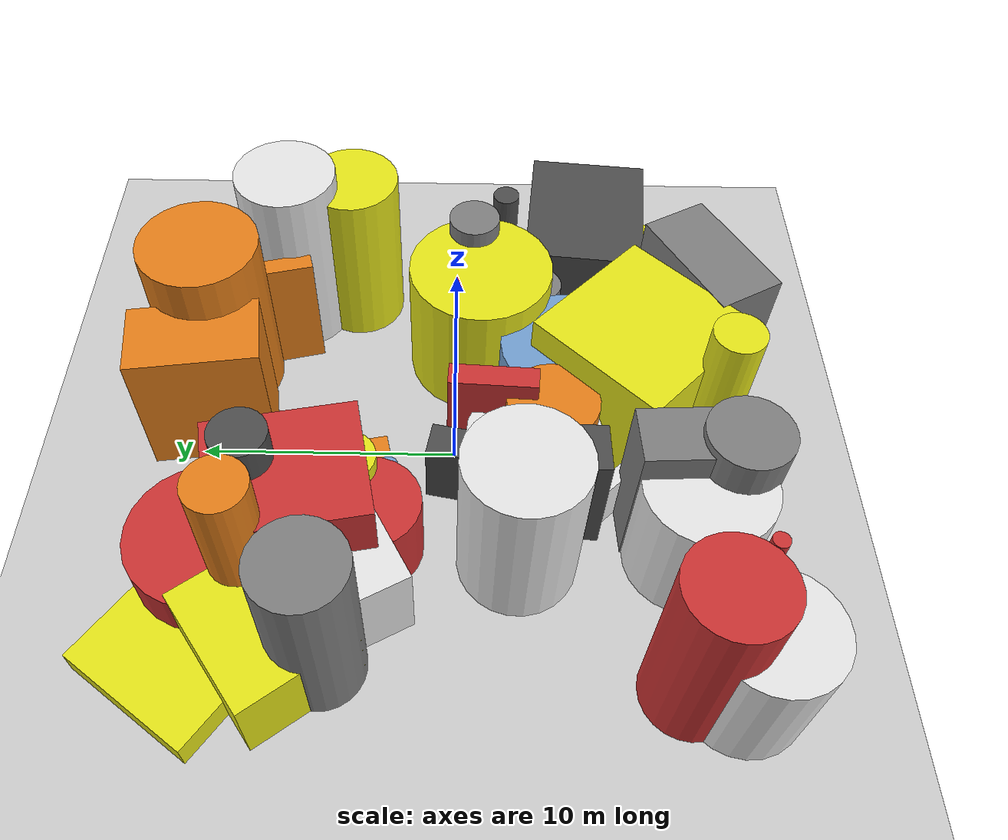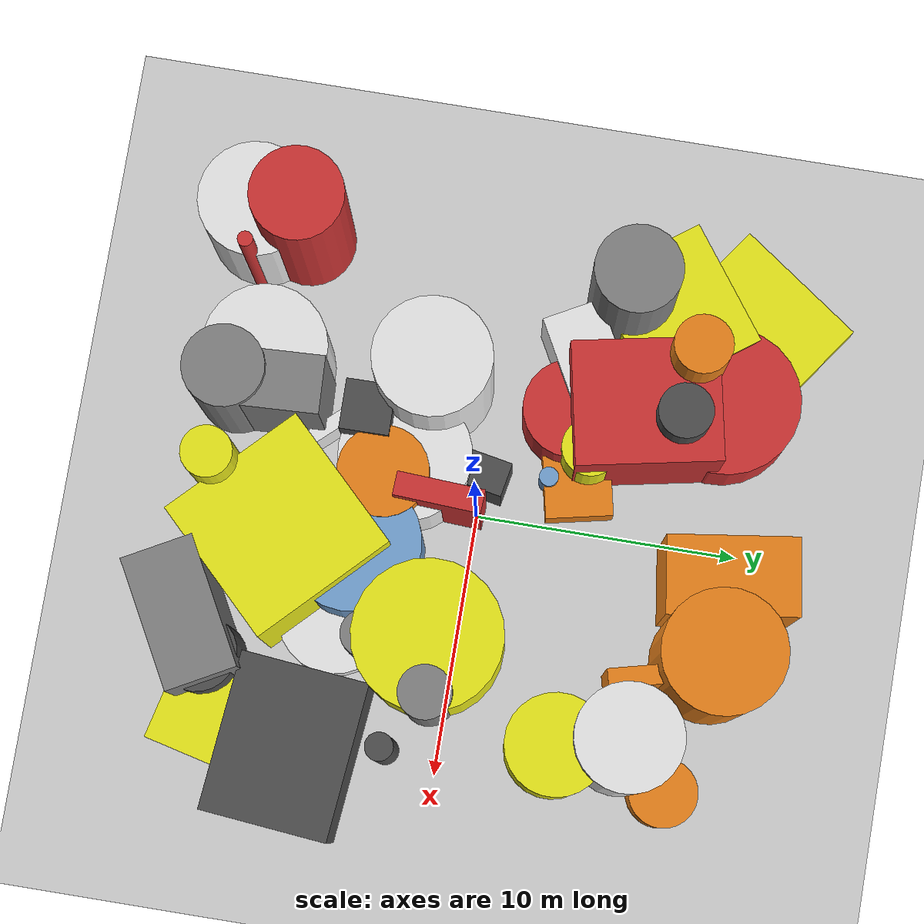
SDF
<?xml version='1.0'?>
<sdf version='1.6'>
  <world name='default'>
    <!-- Sun light -->
    <light name='sun' type='directional'>
      <cast_shadows>1</cast_shadows>
      <pose>0 0 10 0 0 0</pose>
      <diffuse>0.8 0.8 0.8 1</diffuse>
      <specular>0.2 0.2 0.2 1</specular>
      <attenuation>
        <range>1000</range>
        <constant>0.9</constant>
        <linear>0.01</linear>
        <quadratic>0.001</quadratic>
      </attenuation>
      <direction>-0.5 0.1 -0.9</direction>
    </light>

    <!-- Ground plane -->
    <model name='ground_plane'>
      <static>1</static>
      <link name='link'>
        <collision name='collision'>
          <geometry>
            <plane>
              <normal>0 0 1</normal>
              <size>100 100</size>
            </plane>
          </geometry>
          <surface>
            <contact>
              <collide_bitmask>65535</collide_bitmask>
              <ode/>
            </contact>
            <friction>
              <ode>
                <mu>100</mu>
                <mu2>50</mu2>
              </ode>
              <torsional><ode/></torsional>
            </friction>
            <bounce/>
          </surface>
          <max_contacts>10</max_contacts>
        </collision>
        <visual name='visual'>
          <cast_shadows>0</cast_shadows>
          <geometry>
            <plane>
              <normal>0 0 1</normal>
              <size>100 100</size>
            </plane>
          </geometry>
          <material>
            <script>
              <uri>file://media/materials/scripts/gazebo.material</uri>
              <n>Gazebo/Grey</n>
            </script>
          </material>
        </visual>
      </link>
    </model>

    <!-- Environment -->
    <magnetic_field>6e-06 2.3e-05 -4.2e-05</magnetic_field>
    <atmosphere type='adiabatic'/>
    <physics name='default_physics' default='0' type='ode'>
      <gravity>0 0 -9.8</gravity>
      <max_step_size>0.004</max_step_size>
      <real_time_factor>1</real_time_factor>
      <real_time_update_rate>250</real_time_update_rate>
    </physics>
    <scene>
      <ambient>0.4 0.4 0.4 1</ambient>
      <background>0.7 0.7 0.7 1</background>
      <shadows>1</shadows>
    </scene>
    <wind/>
    <spherical_coordinates>
      <surface_model>EARTH_WGS84</surface_model>
      <latitude_deg>0</latitude_deg>
      <longitude_deg>0</longitude_deg>
      <elevation>0</elevation>
      <heading_deg>0</heading_deg>
    </spherical_coordinates>

    <!-- ============ OBSTACLES (48) ============ -->
    <model name='obs_00'>
      <static>1</static>
      <link name='link'>
        <visual name='visual'>
          <geometry>
            <cylinder>
              <radius>1.6359</radius>
              <length>7.3609</length>
            </cylinder>
          </geometry>
          <material>
            <script>
              <n>Gazebo/Grey</n>
              <uri>file://media/materials/scripts/gazebo.material</uri>
            </script>
            <ambient>0.5 0.5 0.5 1</ambient>
          </material>
        </visual>
        <collision name='collision'>
          <geometry>
            <cylinder>
              <radius>1.6359</radius>
              <length>7.3609</length>
            </cylinder>
          </geometry>
          <max_contacts>10</max_contacts>
          <surface>
            <contact><ode/></contact>
            <bounce/>
            <friction>
              <ode><mu>1</mu><mu2>1</mu2></ode>
              <torsional><ode/></torsional>
            </friction>
          </surface>
        </collision>
      </link>
      <pose>-8.9470 4.5095 3.6805 0 0 0.4825</pose>
    </model>

    <model name='obs_01'>
      <static>1</static>
      <link name='link'>
        <visual name='visual'>
          <geometry>
            <cylinder>
              <radius>0.1690</radius>
              <length>2.8627</length>
            </cylinder>
          </geometry>
          <material>
            <script>
              <n>Gazebo/Red</n>
              <uri>file://media/materials/scripts/gazebo.material</uri>
            </script>
            <ambient>0.8 0.2 0.2 1</ambient>
          </material>
        </visual>
        <collision name='collision'>
          <geometry>
            <cylinder>
              <radius>0.1690</radius>
              <length>2.8627</length>
            </cylinder>
          </geometry>
          <max_contacts>10</max_contacts>
          <surface>
            <contact><ode/></contact>
            <bounce/>
            <friction>
              <ode><mu>1</mu><mu2>1</mu2></ode>
              <torsional><ode/></torsional>
            </friction>
          </surface>
        </collision>
      </link>
      <pose>2.9184 -6.1063 1.4313 0 0 1.0100</pose>
    </model>

    <model name='obs_02'>
      <static>1</static>
      <link name='link'>
        <visual name='visual'>
          <geometry>
            <cylinder>
              <radius>0.4771</radius>
              <length>2.1719</length>
            </cylinder>
          </geometry>
          <material>
            <script>
              <n>Gazebo/Blue</n>
              <uri>file://media/materials/scripts/gazebo.material</uri>
            </script>
            <ambient>0.447 0.624 0.812 1</ambient>
          </material>
        </visual>
        <collision name='collision'>
          <geometry>
            <cylinder>
              <radius>0.4771</radius>
              <length>2.1719</length>
            </cylinder>
          </geometry>
          <max_contacts>10</max_contacts>
          <surface>
            <contact><ode/></contact>
            <bounce/>
            <friction>
              <ode><mu>1</mu><mu2>1</mu2></ode>
              <torsional><ode/></torsional>
            </friction>
          </surface>
        </collision>
      </link>
      <pose>-4.6347 -6.8767 1.0860 0 0 1.1028</pose>
    </model>

    <model name='obs_03'>
      <static>1</static>
      <link name='link'>
        <visual name='visual'>
          <geometry>
            <cylinder>
              <radius>1.7100</radius>
              <length>4.4821</length>
            </cylinder>
          </geometry>
          <material>
            <script>
              <n>Gazebo/Orange</n>
              <uri>file://media/materials/scripts/gazebo.material</uri>
            </script>
            <ambient>0.9 0.5 0.1 1</ambient>
          </material>
        </visual>
        <collision name='collision'>
          <geometry>
            <cylinder>
              <radius>1.7100</radius>
              <length>4.4821</length>
            </cylinder>
          </geometry>
          <max_contacts>10</max_contacts>
          <surface>
            <contact><ode/></contact>
            <bounce/>
            <friction>
              <ode><mu>1</mu><mu2>1</mu2></ode>
              <torsional><ode/></torsional>
            </friction>
          </surface>
        </collision>
      </link>
      <pose>-0.6008 -3.5466 2.2411 0 0 3.1350</pose>
    </model>

    <model name='obs_04'>
      <static>1</static>
      <link name='link'>
        <visual name='visual'>
          <geometry>
            <cylinder>
              <radius>2.5137</radius>
              <length>3.5379</length>
            </cylinder>
          </geometry>
          <material>
            <script>
              <n>Gazebo/White</n>
              <uri>file://media/materials/scripts/gazebo.material</uri>
            </script>
            <ambient>0.9 0.9 0.9 1</ambient>
          </material>
        </visual>
        <collision name='collision'>
          <geometry>
            <cylinder>
              <radius>2.5137</radius>
              <length>3.5379</length>
            </cylinder>
          </geometry>
          <max_contacts>10</max_contacts>
          <surface>
            <contact><ode/></contact>
            <bounce/>
            <friction>
              <ode><mu>1</mu><mu2>1</mu2></ode>
              <torsional><ode/></torsional>
            </friction>
          </surface>
        </collision>
      </link>
      <pose>-1.4618 -2.9072 1.7690 0 0 1.0638</pose>
    </model>

    <model name='obs_05'>
      <static>1</static>
      <link name='link'>
        <visual name='visual'>
          <geometry>
            <box>
              <size>5.9331 5.5010 1.1175</size>
            </box>
          </geometry>
          <material>
            <script>
              <n>Gazebo/Yellow</n>
              <uri>file://media/materials/scripts/gazebo.material</uri>
            </script>
            <ambient>0.9 0.9 0.1 1</ambient>
          </material>
        </visual>
        <collision name='collision'>
          <geometry>
            <box>
              <size>5.9331 5.5010 1.1175</size>
            </box>
          </geometry>
          <max_contacts>10</max_contacts>
          <surface>
            <contact><ode/></contact>
            <bounce/>
            <friction>
              <ode><mu>1</mu><mu2>1</mu2></ode>
              <torsional><ode/></torsional>
            </friction>
          </surface>
        </collision>
      </link>
      <pose>-8.3965 9.1624 0.5587 0 0 2.5252</pose>
    </model>

    <model name='obs_06'>
      <static>1</static>
      <link name='link'>
        <visual name='visual'>
          <geometry>
            <box>
              <size>4.3091 3.1963 2.4726</size>
            </box>
          </geometry>
          <material>
            <script>
              <n>Gazebo/Yellow</n>
              <uri>file://media/materials/scripts/gazebo.material</uri>
            </script>
            <ambient>0.9 0.9 0.1 1</ambient>
          </material>
        </visual>
        <collision name='collision'>
          <geometry>
            <box>
              <size>4.3091 3.1963 2.4726</size>
            </box>
          </geometry>
          <max_contacts>10</max_contacts>
          <surface>
            <contact><ode/></contact>
            <bounce/>
            <friction>
              <ode><mu>1</mu><mu2>1</mu2></ode>
              <torsional><ode/></torsional>
            </friction>
          </surface>
        </collision>
      </link>
      <pose>8.6246 -8.6855 1.2363 0 0 2.9061</pose>
    </model>

    <model name='obs_07'>
      <static>1</static>
      <link name='link'>
        <visual name='visual'>
          <geometry>
            <cylinder>
              <radius>1.3016</radius>
              <length>2.3778</length>
            </cylinder>
          </geometry>
          <material>
            <script>
              <n>Gazebo/Orange</n>
              <uri>file://media/materials/scripts/gazebo.material</uri>
            </script>
            <ambient>0.9 0.5 0.1 1</ambient>
          </material>
        </visual>
        <collision name='collision'>
          <geometry>
            <cylinder>
              <radius>1.3016</radius>
              <length>2.3778</length>
            </cylinder>
          </geometry>
          <max_contacts>10</max_contacts>
          <surface>
            <contact><ode/></contact>
            <bounce/>
            <friction>
              <ode><mu>1</mu><mu2>1</mu2></ode>
              <torsional><ode/></torsional>
            </friction>
          </surface>
        </collision>
      </link>
      <pose>9.2991 8.5267 1.1889 0 0 1.6047</pose>
    </model>

    <model name='obs_08'>
      <static>1</static>
      <link name='link'>
        <visual name='visual'>
          <geometry>
            <cylinder>
              <radius>2.2304</radius>
              <length>6.7113</length>
            </cylinder>
          </geometry>
          <material>
            <script>
              <n>Gazebo/White</n>
              <uri>file://media/materials/scripts/gazebo.material</uri>
            </script>
            <ambient>0.9 0.9 0.9 1</ambient>
          </material>
        </visual>
        <collision name='collision'>
          <geometry>
            <cylinder>
              <radius>2.2304</radius>
              <length>6.7113</length>
            </cylinder>
          </geometry>
          <max_contacts>10</max_contacts>
          <surface>
            <contact><ode/></contact>
            <bounce/>
            <friction>
              <ode><mu>1</mu><mu2>1</mu2></ode>
              <torsional><ode/></torsional>
            </friction>
          </surface>
        </collision>
      </link>
      <pose>-4.7194 -2.3481 3.3557 0 0 1.1443</pose>
    </model>

    <model name='obs_09'>
      <static>1</static>
      <link name='link'>
        <visual name='visual'>
          <geometry>
            <cylinder>
              <radius>2.5651</radius>
              <length>4.4245</length>
            </cylinder>
          </geometry>
          <material>
            <script>
              <n>Gazebo/Blue</n>
              <uri>file://media/materials/scripts/gazebo.material</uri>
            </script>
            <ambient>0.447 0.624 0.812 1</ambient>
          </material>
        </visual>
        <collision name='collision'>
          <geometry>
            <cylinder>
              <radius>2.5651</radius>
              <length>4.4245</length>
            </cylinder>
          </geometry>
          <max_contacts>10</max_contacts>
          <surface>
            <contact><ode/></contact>
            <bounce/>
            <friction>
              <ode><mu>1</mu><mu2>1</mu2></ode>
              <torsional><ode/></torsional>
            </friction>
          </surface>
        </collision>
      </link>
      <pose>2.1583 -4.2323 2.2122 0 0 1.5722</pose>
    </model>

    <model name='obs_10'>
      <static>1</static>
      <link name='link'>
        <visual name='visual'>
          <geometry>
            <cylinder>
              <radius>1.8503</radius>
              <length>7.0293</length>
            </cylinder>
          </geometry>
          <material>
            <script>
              <n>Gazebo/Yellow</n>
              <uri>file://media/materials/scripts/gazebo.material</uri>
            </script>
            <ambient>0.9 0.9 0.1 1</ambient>
          </material>
        </visual>
        <collision name='collision'>
          <geometry>
            <cylinder>
              <radius>1.8503</radius>
              <length>7.0293</length>
            </cylinder>
          </geometry>
          <max_contacts>10</max_contacts>
          <surface>
            <contact><ode/></contact>
            <bounce/>
            <friction>
              <ode><mu>1</mu><mu2>1</mu2></ode>
              <torsional><ode/></torsional>
            </friction>
          </surface>
        </collision>
      </link>
      <pose>8.3412 4.2599 3.5146 0 0 0.6301</pose>
    </model>

    <model name='obs_11'>
      <static>1</static>
      <link name='link'>
        <visual name='visual'>
          <geometry>
            <cylinder>
              <radius>1.7549</radius>
              <length>7.7455</length>
            </cylinder>
          </geometry>
          <material>
            <script>
              <n>Gazebo/Red</n>
              <uri>file://media/materials/scripts/gazebo.material</uri>
            </script>
            <ambient>0.8 0.2 0.2 1</ambient>
          </material>
        </visual>
        <collision name='collision'>
          <geometry>
            <cylinder>
              <radius>1.7549</radius>
              <length>7.7455</length>
            </cylinder>
          </geometry>
          <max_contacts>10</max_contacts>
          <surface>
            <contact><ode/></contact>
            <bounce/>
            <friction>
              <ode><mu>1</mu><mu2>1</mu2></ode>
              <torsional><ode/></torsional>
            </friction>
          </surface>
        </collision>
      </link>
      <pose>-9.6163 -8.0894 3.8728 0 0 0.9935</pose>
    </model>

    <model name='obs_12'>
      <static>1</static>
      <link name='link'>
        <visual name='visual'>
          <geometry>
            <cylinder>
              <radius>1.5312</radius>
              <length>6.3233</length>
            </cylinder>
          </geometry>
          <material>
            <script>
              <n>Gazebo/Grey</n>
              <uri>file://media/materials/scripts/gazebo.material</uri>
            </script>
            <ambient>0.5 0.5 0.5 1</ambient>
          </material>
        </visual>
        <collision name='collision'>
          <geometry>
            <cylinder>
              <radius>1.5312</radius>
              <length>6.3233</length>
            </cylinder>
          </geometry>
          <max_contacts>10</max_contacts>
          <surface>
            <contact><ode/></contact>
            <bounce/>
            <friction>
              <ode><mu>1</mu><mu2>1</mu2></ode>
              <torsional><ode/></torsional>
            </friction>
          </surface>
        </collision>
      </link>
      <pose>-3.2318 -9.7937 3.1617 0 0 0.4944</pose>
    </model>

    <model name='obs_13'>
      <static>1</static>
      <link name='link'>
        <visual name='visual'>
          <geometry>
            <box>
              <size>3.4564 2.2747 3.6058</size>
            </box>
          </geometry>
          <material>
            <script>
              <n>Gazebo/White</n>
              <uri>file://media/materials/scripts/gazebo.material</uri>
            </script>
            <ambient>0.9 0.9 0.9 1</ambient>
          </material>
        </visual>
        <collision name='collision'>
          <geometry>
            <box>
              <size>3.4564 2.2747 3.6058</size>
            </box>
          </geometry>
          <max_contacts>10</max_contacts>
          <surface>
            <contact><ode/></contact>
            <bounce/>
            <friction>
              <ode><mu>1</mu><mu2>1</mu2></ode>
              <torsional><ode/></torsional>
            </friction>
          </surface>
        </collision>
      </link>
      <pose>-6.3550 3.1518 1.8029 0 0 0.5002</pose>
    </model>

    <model name='obs_14'>
      <static>1</static>
      <link name='link'>
        <visual name='visual'>
          <geometry>
            <cylinder>
              <radius>0.9491</radius>
              <length>7.4623</length>
            </cylinder>
          </geometry>
          <material>
            <script>
              <n>Gazebo/Yellow</n>
              <uri>file://media/materials/scripts/gazebo.material</uri>
            </script>
            <ambient>0.9 0.9 0.1 1</ambient>
          </material>
        </visual>
        <collision name='collision'>
          <geometry>
            <cylinder>
              <radius>0.9491</radius>
              <length>7.4623</length>
            </cylinder>
          </geometry>
          <max_contacts>10</max_contacts>
          <surface>
            <contact><ode/></contact>
            <bounce/>
            <friction>
              <ode><mu>1</mu><mu2>1</mu2></ode>
              <torsional><ode/></torsional>
            </friction>
          </surface>
        </collision>
      </link>
      <pose>0.1060 -9.6788 3.7311 0 0 2.0988</pose>
    </model>

    <model name='obs_15'>
      <static>1</static>
      <link name='link'>
        <visual name='visual'>
          <geometry>
            <box>
              <size>5.7664 0.7182 5.1920</size>
            </box>
          </geometry>
          <material>
            <script>
              <n>Gazebo/Orange</n>
              <uri>file://media/materials/scripts/gazebo.material</uri>
            </script>
            <ambient>0.9 0.5 0.1 1</ambient>
          </material>
        </visual>
        <collision name='collision'>
          <geometry>
            <box>
              <size>5.7664 0.7182 5.1920</size>
            </box>
          </geometry>
          <max_contacts>10</max_contacts>
          <surface>
            <contact><ode/></contact>
            <bounce/>
            <friction>
              <ode><mu>1</mu><mu2>1</mu2></ode>
              <torsional><ode/></torsional>
            </friction>
          </surface>
        </collision>
      </link>
      <pose>4.9337 8.5565 2.5960 0 0 1.8148</pose>
    </model>

    <model name='obs_16'>
      <static>1</static>
      <link name='link'>
        <visual name='visual'>
          <geometry>
            <box>
              <size>1.8605 1.8876 4.7456</size>
            </box>
          </geometry>
          <material>
            <script>
              <n>Gazebo/DarkGrey</n>
              <uri>file://media/materials/scripts/gazebo.material</uri>
            </script>
            <ambient>0.3 0.3 0.3 1</ambient>
          </material>
        </visual>
        <collision name='collision'>
          <geometry>
            <box>
              <size>1.8605 1.8876 4.7456</size>
            </box>
          </geometry>
          <max_contacts>10</max_contacts>
          <surface>
            <contact><ode/></contact>
            <bounce/>
            <friction>
              <ode><mu>1</mu><mu2>1</mu2></ode>
              <torsional><ode/></torsional>
            </friction>
          </surface>
        </collision>
      </link>
      <pose>-2.8187 -4.4881 2.3728 0 0 1.5789</pose>
    </model>

    <model name='obs_17'>
      <static>1</static>
      <link name='link'>
        <visual name='visual'>
          <geometry>
            <box>
              <size>4.1437 2.1639 5.9809</size>
            </box>
          </geometry>
          <material>
            <script>
              <n>Gazebo/Grey</n>
              <uri>file://media/materials/scripts/gazebo.material</uri>
            </script>
            <ambient>0.5 0.5 0.5 1</ambient>
          </material>
        </visual>
        <collision name='collision'>
          <geometry>
            <box>
              <size>4.1437 2.1639 5.9809</size>
            </box>
          </geometry>
          <max_contacts>10</max_contacts>
          <surface>
            <contact><ode/></contact>
            <bounce/>
            <friction>
              <ode><mu>1</mu><mu2>1</mu2></ode>
              <torsional><ode/></torsional>
            </friction>
          </surface>
        </collision>
      </link>
      <pose>-3.0515 -8.2254 2.9904 0 0 1.6182</pose>
    </model>

    <model name='obs_18'>
      <static>1</static>
      <link name='link'>
        <visual name='visual'>
          <geometry>
            <cylinder>
              <radius>2.8036</radius>
              <length>2.9886</length>
            </cylinder>
          </geometry>
          <material>
            <script>
              <n>Gazebo/Red</n>
              <uri>file://media/materials/scripts/gazebo.material</uri>
            </script>
            <ambient>0.8 0.2 0.2 1</ambient>
          </material>
        </visual>
        <collision name='collision'>
          <geometry>
            <cylinder>
              <radius>2.8036</radius>
              <length>2.9886</length>
            </cylinder>
          </geometry>
          <max_contacts>10</max_contacts>
          <surface>
            <contact><ode/></contact>
            <bounce/>
            <friction>
              <ode><mu>1</mu><mu2>1</mu2></ode>
              <torsional><ode/></torsional>
            </friction>
          </surface>
        </collision>
      </link>
      <pose>-5.4829 8.6198 1.4943 0 0 0.9745</pose>
    </model>

    <model name='obs_19'>
      <static>1</static>
      <link name='link'>
        <visual name='visual'>
          <geometry>
            <box>
              <size>3.2898 0.8947 5.1800</size>
            </box>
          </geometry>
          <material>
            <script>
              <n>Gazebo/Red</n>
              <uri>file://media/materials/scripts/gazebo.material</uri>
            </script>
            <ambient>0.8 0.2 0.2 1</ambient>
          </material>
        </visual>
        <collision name='collision'>
          <geometry>
            <box>
              <size>3.2898 0.8947 5.1800</size>
            </box>
          </geometry>
          <max_contacts>10</max_contacts>
          <surface>
            <contact><ode/></contact>
            <bounce/>
            <friction>
              <ode><mu>1</mu><mu2>1</mu2></ode>
              <torsional><ode/></torsional>
            </friction>
          </surface>
        </collision>
      </link>
      <pose>-0.0641 -1.3656 2.5900 0 0 1.5184</pose>
    </model>

    <model name='obs_20'>
      <static>1</static>
      <link name='link'>
        <visual name='visual'>
          <geometry>
            <cylinder>
              <radius>2.1671</radius>
              <length>5.2596</length>
            </cylinder>
          </geometry>
          <material>
            <script>
              <n>Gazebo/White</n>
              <uri>file://media/materials/scripts/gazebo.material</uri>
            </script>
            <ambient>0.9 0.9 0.9 1</ambient>
          </material>
        </visual>
        <collision name='collision'>
          <geometry>
            <cylinder>
              <radius>2.1671</radius>
              <length>5.2596</length>
            </cylinder>
          </geometry>
          <max_contacts>10</max_contacts>
          <surface>
            <contact><ode/></contact>
            <bounce/>
            <friction>
              <ode><mu>1</mu><mu2>1</mu2></ode>
              <torsional><ode/></torsional>
            </friction>
          </surface>
        </collision>
      </link>
      <pose>-9.7491 -9.8316 2.6298 0 0 0.2023</pose>
    </model>

    <model name='obs_21'>
      <static>1</static>
      <link name='link'>
        <visual name='visual'>
          <geometry>
            <box>
              <size>5.8023 5.8471 5.7132</size>
            </box>
          </geometry>
          <material>
            <script>
              <n>Gazebo/Yellow</n>
              <uri>file://media/materials/scripts/gazebo.material</uri>
            </script>
            <ambient>0.9 0.9 0.1 1</ambient>
          </material>
        </visual>
        <collision name='collision'>
          <geometry>
            <box>
              <size>5.8023 5.8471 5.7132</size>
            </box>
          </geometry>
          <max_contacts>10</max_contacts>
          <surface>
            <contact><ode/></contact>
            <bounce/>
            <friction>
              <ode><mu>1</mu><mu2>1</mu2></ode>
              <torsional><ode/></torsional>
            </friction>
          </surface>
        </collision>
      </link>
      <pose>2.1114 -6.9274 2.8566 0 0 0.7932</pose>
    </model>

    <model name='obs_22'>
      <static>1</static>
      <link name='link'>
        <visual name='visual'>
          <geometry>
            <cylinder>
              <radius>0.3677</radius>
              <length>1.8608</length>
            </cylinder>
          </geometry>
          <material>
            <script>
              <n>Gazebo/Blue</n>
              <uri>file://media/materials/scripts/gazebo.material</uri>
            </script>
            <ambient>0.447 0.624 0.812 1</ambient>
          </material>
        </visual>
        <collision name='collision'>
          <geometry>
            <cylinder>
              <radius>0.3677</radius>
              <length>1.8608</length>
            </cylinder>
          </geometry>
          <max_contacts>10</max_contacts>
          <surface>
            <contact><ode/></contact>
            <bounce/>
            <friction>
              <ode><mu>1</mu><mu2>1</mu2></ode>
              <torsional><ode/></torsional>
            </friction>
          </surface>
        </collision>
      </link>
      <pose>-1.7360 2.4928 0.9304 0 0 0.6099</pose>
    </model>

    <model name='obs_23'>
      <static>1</static>
      <link name='link'>
        <visual name='visual'>
          <geometry>
            <cylinder>
              <radius>1.0134</radius>
              <length>7.1240</length>
            </cylinder>
          </geometry>
          <material>
            <script>
              <n>Gazebo/DarkGrey</n>
              <uri>file://media/materials/scripts/gazebo.material</uri>
            </script>
            <ambient>0.3 0.3 0.3 1</ambient>
          </material>
        </visual>
        <collision name='collision'>
          <geometry>
            <cylinder>
              <radius>1.0134</radius>
              <length>7.1240</length>
            </cylinder>
          </geometry>
          <max_contacts>10</max_contacts>
          <surface>
            <contact><ode/></contact>
            <bounce/>
            <friction>
              <ode><mu>1</mu><mu2>1</mu2></ode>
              <torsional><ode/></torsional>
            </friction>
          </surface>
        </collision>
      </link>
      <pose>-4.1539 6.9751 3.5620 0 0 0.7446</pose>
    </model>

    <model name='obs_24'>
      <static>1</static>
      <link name='link'>
        <visual name='visual'>
          <geometry>
            <box>
              <size>4.6890 1.3151 2.8694</size>
            </box>
          </geometry>
          <material>
            <script>
              <n>Gazebo/DarkGrey</n>
              <uri>file://media/materials/scripts/gazebo.material</uri>
            </script>
            <ambient>0.3 0.3 0.3 1</ambient>
          </material>
        </visual>
        <collision name='collision'>
          <geometry>
            <box>
              <size>4.6890 1.3151 2.8694</size>
            </box>
          </geometry>
          <max_contacts>10</max_contacts>
          <surface>
            <contact><ode/></contact>
            <bounce/>
            <friction>
              <ode><mu>1</mu><mu2>1</mu2></ode>
              <torsional><ode/></torsional>
            </friction>
          </surface>
        </collision>
      </link>
      <pose>-1.6364 -1.3513 1.4347 0 0 1.3847</pose>
    </model>

    <model name='obs_25'>
      <static>1</static>
      <link name='link'>
        <visual name='visual'>
          <geometry>
            <box>
              <size>2.5647 2.3828 1.5262</size>
            </box>
          </geometry>
          <material>
            <script>
              <n>Gazebo/Orange</n>
              <uri>file://media/materials/scripts/gazebo.material</uri>
            </script>
            <ambient>0.9 0.5 0.1 1</ambient>
          </material>
        </visual>
        <collision name='collision'>
          <geometry>
            <box>
              <size>2.5647 2.3828 1.5262</size>
            </box>
          </geometry>
          <max_contacts>10</max_contacts>
          <surface>
            <contact><ode/></contact>
            <bounce/>
            <friction>
              <ode><mu>1</mu><mu2>1</mu2></ode>
              <torsional><ode/></torsional>
            </friction>
          </surface>
        </collision>
      </link>
      <pose>-1.6078 3.6303 0.7631 0 0 1.7808</pose>
    </model>

    <model name='obs_26'>
      <static>1</static>
      <link name='link'>
        <visual name='visual'>
          <geometry>
            <cylinder>
              <radius>2.3349</radius>
              <length>4.8920</length>
            </cylinder>
          </geometry>
          <material>
            <script>
              <n>Gazebo/White</n>
              <uri>file://media/materials/scripts/gazebo.material</uri>
            </script>
            <ambient>0.9 0.9 0.9 1</ambient>
          </material>
        </visual>
        <collision name='collision'>
          <geometry>
            <cylinder>
              <radius>2.3349</radius>
              <length>4.8920</length>
            </cylinder>
          </geometry>
          <max_contacts>10</max_contacts>
          <surface>
            <contact><ode/></contact>
            <bounce/>
            <friction>
              <ode><mu>1</mu><mu2>1</mu2></ode>
              <torsional><ode/></torsional>
            </friction>
          </surface>
        </collision>
      </link>
      <pose>-4.4243 -8.5853 2.4460 0 0 2.0033</pose>
    </model>

    <model name='obs_27'>
      <static>1</static>
      <link name='link'>
        <visual name='visual'>
          <geometry>
            <cylinder>
              <radius>2.7956</radius>
              <length>5.4335</length>
            </cylinder>
          </geometry>
          <material>
            <script>
              <n>Gazebo/Yellow</n>
              <uri>file://media/materials/scripts/gazebo.material</uri>
            </script>
            <ambient>0.9 0.9 0.1 1</ambient>
          </material>
        </visual>
        <collision name='collision'>
          <geometry>
            <cylinder>
              <radius>2.7956</radius>
              <length>5.4335</length>
            </cylinder>
          </geometry>
          <max_contacts>10</max_contacts>
          <surface>
            <contact><ode/></contact>
            <bounce/>
            <friction>
              <ode><mu>1</mu><mu2>1</mu2></ode>
              <torsional><ode/></torsional>
            </friction>
          </surface>
        </collision>
      </link>
      <pose>5.1458 -0.9102 2.7167 0 0 1.6548</pose>
    </model>

    <model name='obs_28'>
      <static>1</static>
      <link name='link'>
        <visual name='visual'>
          <geometry>
            <box>
              <size>5.9661 4.8197 4.2437</size>
            </box>
          </geometry>
          <material>
            <script>
              <n>Gazebo/DarkGrey</n>
              <uri>file://media/materials/scripts/gazebo.material</uri>
            </script>
            <ambient>0.3 0.3 0.3 1</ambient>
          </material>
        </visual>
        <collision name='collision'>
          <geometry>
            <box>
              <size>5.9661 4.8197 4.2437</size>
            </box>
          </geometry>
          <max_contacts>10</max_contacts>
          <surface>
            <contact><ode/></contact>
            <bounce/>
            <friction>
              <ode><mu>1</mu><mu2>1</mu2></ode>
              <torsional><ode/></torsional>
            </friction>
          </surface>
        </collision>
      </link>
      <pose>9.8948 -5.4373 2.1218 0 0 3.0443</pose>
    </model>

    <model name='obs_29'>
      <static>1</static>
      <link name='link'>
        <visual name='visual'>
          <geometry>
            <cylinder>
              <radius>0.9983</radius>
              <length>6.1079</length>
            </cylinder>
          </geometry>
          <material>
            <script>
              <n>Gazebo/Grey</n>
              <uri>file://media/materials/scripts/gazebo.material</uri>
            </script>
            <ambient>0.5 0.5 0.5 1</ambient>
          </material>
        </visual>
        <collision name='collision'>
          <geometry>
            <cylinder>
              <radius>0.9983</radius>
              <length>6.1079</length>
            </cylinder>
          </geometry>
          <max_contacts>10</max_contacts>
          <surface>
            <contact><ode/></contact>
            <bounce/>
            <friction>
              <ode><mu>1</mu><mu2>1</mu2></ode>
              <torsional><ode/></torsional>
            </friction>
          </surface>
        </collision>
      </link>
      <pose>7.2225 -0.6433 3.0539 0 0 0.7692</pose>
    </model>

    <model name='obs_30'>
      <static>1</static>
      <link name='link'>
        <visual name='visual'>
          <geometry>
            <cylinder>
              <radius>0.8702</radius>
              <length>4.3156</length>
            </cylinder>
          </geometry>
          <material>
            <script>
              <n>Gazebo/Grey</n>
              <uri>file://media/materials/scripts/gazebo.material</uri>
            </script>
            <ambient>0.5 0.5 0.5 1</ambient>
          </material>
        </visual>
        <collision name='collision'>
          <geometry>
            <cylinder>
              <radius>0.8702</radius>
              <length>4.3156</length>
            </cylinder>
          </geometry>
          <max_contacts>10</max_contacts>
          <surface>
            <contact><ode/></contact>
            <bounce/>
            <friction>
              <ode><mu>1</mu><mu2>1</mu2></ode>
              <torsional><ode/></torsional>
            </friction>
          </surface>
        </collision>
      </link>
      <pose>5.3867 -3.2647 2.1578 0 0 2.3981</pose>
    </model>

    <model name='obs_31'>
      <static>1</static>
      <link name='link'>
        <visual name='visual'>
          <geometry>
            <cylinder>
              <radius>1.4707</radius>
              <length>4.1628</length>
            </cylinder>
          </geometry>
          <material>
            <script>
              <n>Gazebo/DarkGrey</n>
              <uri>file://media/materials/scripts/gazebo.material</uri>
            </script>
            <ambient>0.3 0.3 0.3 1</ambient>
          </material>
        </visual>
        <collision name='collision'>
          <geometry>
            <cylinder>
              <radius>1.4707</radius>
              <length>4.1628</length>
            </cylinder>
          </geometry>
          <max_contacts>10</max_contacts>
          <surface>
            <contact><ode/></contact>
            <bounce/>
            <friction>
              <ode><mu>1</mu><mu2>1</mu2></ode>
              <torsional><ode/></torsional>
            </friction>
          </surface>
        </collision>
      </link>
      <pose>7.0111 -9.1661 2.0814 0 0 0.0538</pose>
    </model>

    <model name='obs_32'>
      <static>1</static>
      <link name='link'>
        <visual name='visual'>
          <geometry>
            <box>
              <size>2.4329 0.5488 2.1492</size>
            </box>
          </geometry>
          <material>
            <script>
              <n>Gazebo/White</n>
              <uri>file://media/materials/scripts/gazebo.material</uri>
            </script>
            <ambient>0.9 0.9 0.9 1</ambient>
          </material>
        </visual>
        <collision name='collision'>
          <geometry>
            <box>
              <size>2.4329 0.5488 2.1492</size>
            </box>
          </geometry>
          <max_contacts>10</max_contacts>
          <surface>
            <contact><ode/></contact>
            <bounce/>
            <friction>
              <ode><mu>1</mu><mu2>1</mu2></ode>
              <torsional><ode/></torsional>
            </friction>
          </surface>
        </collision>
      </link>
      <pose>-1.9525 -6.3437 1.0746 0 0 2.3135</pose>
    </model>

    <model name='obs_33'>
      <static>1</static>
      <link name='link'>
        <visual name='visual'>
          <geometry>
            <box>
              <size>4.6068 5.4358 5.7534</size>
            </box>
          </geometry>
          <material>
            <script>
              <n>Gazebo/Red</n>
              <uri>file://media/materials/scripts/gazebo.material</uri>
            </script>
            <ambient>0.8 0.2 0.2 1</ambient>
          </material>
        </visual>
        <collision name='collision'>
          <geometry>
            <box>
              <size>4.6068 5.4358 5.7534</size>
            </box>
          </geometry>
          <max_contacts>10</max_contacts>
          <surface>
            <contact><ode/></contact>
            <bounce/>
            <friction>
              <ode><mu>1</mu><mu2>1</mu2></ode>
              <torsional><ode/></torsional>
            </friction>
          </surface>
        </collision>
      </link>
      <pose>-4.5285 5.5997 2.8767 0 0 0.1931</pose>
    </model>

    <model name='obs_34'>
      <static>1</static>
      <link name='link'>
        <visual name='visual'>
          <geometry>
            <cylinder>
              <radius>2.2882</radius>
              <length>7.4185</length>
            </cylinder>
          </geometry>
          <material>
            <script>
              <n>Gazebo/Orange</n>
              <uri>file://media/materials/scripts/gazebo.material</uri>
            </script>
            <ambient>0.9 0.5 0.1 1</ambient>
          </material>
        </visual>
        <collision name='collision'>
          <geometry>
            <cylinder>
              <radius>2.2882</radius>
              <length>7.4185</length>
            </cylinder>
          </geometry>
          <max_contacts>10</max_contacts>
          <surface>
            <contact><ode/></contact>
            <bounce/>
            <friction>
              <ode><mu>1</mu><mu2>1</mu2></ode>
              <torsional><ode/></torsional>
            </friction>
          </surface>
        </collision>
      </link>
      <pose>4.1667 9.6151 3.7093 0 0 0.4500</pose>
    </model>

    <model name='obs_35'>
      <static>1</static>
      <link name='link'>
        <visual name='visual'>
          <geometry>
            <cylinder>
              <radius>1.0865</radius>
              <length>3.9237</length>
            </cylinder>
          </geometry>
          <material>
            <script>
              <n>Gazebo/Yellow</n>
              <uri>file://media/materials/scripts/gazebo.material</uri>
            </script>
            <ambient>0.9 0.9 0.1 1</ambient>
          </material>
        </visual>
        <collision name='collision'>
          <geometry>
            <cylinder>
              <radius>1.0865</radius>
              <length>3.9237</length>
            </cylinder>
          </geometry>
          <max_contacts>10</max_contacts>
          <surface>
            <contact><ode/></contact>
            <bounce/>
            <friction>
              <ode><mu>1</mu><mu2>1</mu2></ode>
              <torsional><ode/></torsional>
            </friction>
          </surface>
        </collision>
      </link>
      <pose>-2.7823 3.8489 1.9618 0 0 1.4759</pose>
    </model>

    <model name='obs_36'>
      <static>1</static>
      <link name='link'>
        <visual name='visual'>
          <geometry>
            <cylinder>
              <radius>0.3071</radius>
              <length>4.1927</length>
            </cylinder>
          </geometry>
          <material>
            <script>
              <n>Gazebo/Blue</n>
              <uri>file://media/materials/scripts/gazebo.material</uri>
            </script>
            <ambient>0.447 0.624 0.812 1</ambient>
          </material>
        </visual>
        <collision name='collision'>
          <geometry>
            <cylinder>
              <radius>0.3071</radius>
              <length>4.1927</length>
            </cylinder>
          </geometry>
          <max_contacts>10</max_contacts>
          <surface>
            <contact><ode/></contact>
            <bounce/>
            <friction>
              <ode><mu>1</mu><mu2>1</mu2></ode>
              <torsional><ode/></torsional>
            </friction>
          </surface>
        </collision>
      </link>
      <pose>-4.9014 -4.0689 2.0964 0 0 1.0063</pose>
    </model>

    <model name='obs_37'>
      <static>1</static>
      <link name='link'>
        <visual name='visual'>
          <geometry>
            <cylinder>
              <radius>1.0808</radius>
              <length>7.7554</length>
            </cylinder>
          </geometry>
          <material>
            <script>
              <n>Gazebo/Orange</n>
              <uri>file://media/materials/scripts/gazebo.material</uri>
            </script>
            <ambient>0.9 0.5 0.1 1</ambient>
          </material>
        </visual>
        <collision name='collision'>
          <geometry>
            <cylinder>
              <radius>1.0808</radius>
              <length>7.7554</length>
            </cylinder>
          </geometry>
          <max_contacts>10</max_contacts>
          <surface>
            <contact><ode/></contact>
            <bounce/>
            <friction>
              <ode><mu>1</mu><mu2>1</mu2></ode>
              <torsional><ode/></torsional>
            </friction>
          </surface>
        </collision>
      </link>
      <pose>-6.5219 7.2019 3.8777 0 0 0.1405</pose>
    </model>

    <model name='obs_38'>
      <static>1</static>
      <link name='link'>
        <visual name='visual'>
          <geometry>
            <cylinder>
              <radius>2.1608</radius>
              <length>1.2938</length>
            </cylinder>
          </geometry>
          <material>
            <script>
              <n>Gazebo/White</n>
              <uri>file://media/materials/scripts/gazebo.material</uri>
            </script>
            <ambient>0.9 0.9 0.9 1</ambient>
          </material>
        </visual>
        <collision name='collision'>
          <geometry>
            <cylinder>
              <radius>2.1608</radius>
              <length>1.2938</length>
            </cylinder>
          </geometry>
          <max_contacts>10</max_contacts>
          <surface>
            <contact><ode/></contact>
            <bounce/>
            <friction>
              <ode><mu>1</mu><mu2>1</mu2></ode>
              <torsional><ode/></torsional>
            </friction>
          </surface>
        </collision>
      </link>
      <pose>4.7498 -4.6142 0.6469 0 0 2.9418</pose>
    </model>

    <model name='obs_39'>
      <static>1</static>
      <link name='link'>
        <visual name='visual'>
          <geometry>
            <cylinder>
              <radius>0.5267</radius>
              <length>5.4159</length>
            </cylinder>
          </geometry>
          <material>
            <script>
              <n>Gazebo/DarkGrey</n>
              <uri>file://media/materials/scripts/gazebo.material</uri>
            </script>
            <ambient>0.3 0.3 0.3 1</ambient>
          </material>
        </visual>
        <collision name='collision'>
          <geometry>
            <cylinder>
              <radius>0.5267</radius>
              <length>5.4159</length>
            </cylinder>
          </geometry>
          <max_contacts>10</max_contacts>
          <surface>
            <contact><ode/></contact>
            <bounce/>
            <friction>
              <ode><mu>1</mu><mu2>1</mu2></ode>
              <torsional><ode/></torsional>
            </friction>
          </surface>
        </collision>
      </link>
      <pose>9.3801 -1.9696 2.7079 0 0 2.4352</pose>
    </model>

    <model name='obs_40'>
      <static>1</static>
      <link name='link'>
        <visual name='visual'>
          <geometry>
            <cylinder>
              <radius>1.9784</radius>
              <length>7.7974</length>
            </cylinder>
          </geometry>
          <material>
            <script>
              <n>Gazebo/White</n>
              <uri>file://media/materials/scripts/gazebo.material</uri>
            </script>
            <ambient>0.9 0.9 0.9 1</ambient>
          </material>
        </visual>
        <collision name='collision'>
          <geometry>
            <cylinder>
              <radius>1.9784</radius>
              <length>7.7974</length>
            </cylinder>
          </geometry>
          <max_contacts>10</max_contacts>
          <surface>
            <contact><ode/></contact>
            <bounce/>
            <friction>
              <ode><mu>1</mu><mu2>1</mu2></ode>
              <torsional><ode/></torsional>
            </friction>
          </surface>
        </collision>
      </link>
      <pose>7.7047 6.7483 3.8987 0 0 2.3159</pose>
    </model>

    <model name='obs_41'>
      <static>1</static>
      <link name='link'>
        <visual name='visual'>
          <geometry>
            <cylinder>
              <radius>1.3763</radius>
              <length>2.7846</length>
            </cylinder>
          </geometry>
          <material>
            <script>
              <n>Gazebo/Yellow</n>
              <uri>file://media/materials/scripts/gazebo.material</uri>
            </script>
            <ambient>0.9 0.9 0.1 1</ambient>
          </material>
        </visual>
        <collision name='collision'>
          <geometry>
            <cylinder>
              <radius>1.3763</radius>
              <length>2.7846</length>
            </cylinder>
          </geometry>
          <max_contacts>10</max_contacts>
          <surface>
            <contact><ode/></contact>
            <bounce/>
            <friction>
              <ode><mu>1</mu><mu2>1</mu2></ode>
              <torsional><ode/></torsional>
            </friction>
          </surface>
        </collision>
      </link>
      <pose>-4.3657 9.4261 1.3923 0 0 2.7818</pose>
    </model>

    <model name='obs_42'>
      <static>1</static>
      <link name='link'>
        <visual name='visual'>
          <geometry>
            <box>
              <size>4.9800 4.5423 3.1674</size>
            </box>
          </geometry>
          <material>
            <script>
              <n>Gazebo/Yellow</n>
              <uri>file://media/materials/scripts/gazebo.material</uri>
            </script>
            <ambient>0.9 0.9 0.1 1</ambient>
          </material>
        </visual>
        <collision name='collision'>
          <geometry>
            <box>
              <size>4.9800 4.5423 3.1674</size>
            </box>
          </geometry>
          <max_contacts>10</max_contacts>
          <surface>
            <contact><ode/></contact>
            <bounce/>
            <friction>
              <ode><mu>1</mu><mu2>1</mu2></ode>
              <torsional><ode/></torsional>
            </friction>
          </surface>
        </collision>
      </link>
      <pose>-8.5832 6.2189 1.5837 0 0 0.6380</pose>
    </model>

    <model name='obs_43'>
      <static>1</static>
      <link name='link'>
        <visual name='visual'>
          <geometry>
            <cylinder>
              <radius>0.5054</radius>
              <length>2.5037</length>
            </cylinder>
          </geometry>
          <material>
            <script>
              <n>Gazebo/Yellow</n>
              <uri>file://media/materials/scripts/gazebo.material</uri>
            </script>
            <ambient>0.9 0.9 0.1 1</ambient>
          </material>
        </visual>
        <collision name='collision'>
          <geometry>
            <cylinder>
              <radius>0.5054</radius>
              <length>2.5037</length>
            </cylinder>
          </geometry>
          <max_contacts>10</max_contacts>
          <surface>
            <contact><ode/></contact>
            <bounce/>
            <friction>
              <ode><mu>1</mu><mu2>1</mu2></ode>
              <torsional><ode/></torsional>
            </friction>
          </surface>
        </collision>
      </link>
      <pose>3.9583 0.4764 1.2519 0 0 2.6590</pose>
    </model>

    <model name='obs_44'>
      <static>1</static>
      <link name='link'>
        <visual name='visual'>
          <geometry>
            <box>
              <size>2.7278 5.0797 5.7318</size>
            </box>
          </geometry>
          <material>
            <script>
              <n>Gazebo/Grey</n>
              <uri>file://media/materials/scripts/gazebo.material</uri>
            </script>
            <ambient>0.5 0.5 0.5 1</ambient>
          </material>
        </visual>
        <collision name='collision'>
          <geometry>
            <box>
              <size>2.7278 5.0797 5.7318</size>
            </box>
          </geometry>
          <max_contacts>10</max_contacts>
          <surface>
            <contact><ode/></contact>
            <bounce/>
            <friction>
              <ode><mu>1</mu><mu2>1</mu2></ode>
              <torsional><ode/></torsional>
            </friction>
          </surface>
        </collision>
      </link>
      <pose>5.8059 -9.8764 2.8659 0 0 2.0711</pose>
    </model>

    <model name='obs_45'>
      <static>1</static>
      <link name='link'>
        <visual name='visual'>
          <geometry>
            <box>
              <size>2.9183 4.8787 5.7061</size>
            </box>
          </geometry>
          <material>
            <script>
              <n>Gazebo/Orange</n>
              <uri>file://media/materials/scripts/gazebo.material</uri>
            </script>
            <ambient>0.9 0.5 0.1 1</ambient>
          </material>
        </visual>
        <collision name='collision'>
          <geometry>
            <box>
              <size>2.9183 4.8787 5.7061</size>
            </box>
          </geometry>
          <max_contacts>10</max_contacts>
          <surface>
            <contact><ode/></contact>
            <bounce/>
            <friction>
              <ode><mu>1</mu><mu2>1</mu2></ode>
              <torsional><ode/></torsional>
            </friction>
          </surface>
        </collision>
      </link>
      <pose>1.2745 9.6439 2.8530 0 0 0.1382</pose>
    </model>

    <model name='obs_46'>
      <static>1</static>
      <link name='link'>
        <visual name='visual'>
          <geometry>
            <cylinder>
              <radius>1.8626</radius>
              <length>3.2616</length>
            </cylinder>
          </geometry>
          <material>
            <script>
              <n>Gazebo/Red</n>
              <uri>file://media/materials/scripts/gazebo.material</uri>
            </script>
            <ambient>0.8 0.2 0.2 1</ambient>
          </material>
        </visual>
        <collision name='collision'>
          <geometry>
            <cylinder>
              <radius>1.8626</radius>
              <length>3.2616</length>
            </cylinder>
          </geometry>
          <max_contacts>10</max_contacts>
          <surface>
            <contact><ode/></contact>
            <bounce/>
            <friction>
              <ode><mu>1</mu><mu2>1</mu2></ode>
              <torsional><ode/></torsional>
            </friction>
          </surface>
        </collision>
      </link>
      <pose>-4.2301 2.9545 1.6308 0 0 1.8795</pose>
    </model>

    <model name='obs_47'>
      <static>1</static>
      <link name='link'>
        <visual name='visual'>
          <geometry>
            <cylinder>
              <radius>0.2877</radius>
              <length>7.1747</length>
            </cylinder>
          </geometry>
          <material>
            <script>
              <n>Gazebo/Red</n>
              <uri>file://media/materials/scripts/gazebo.material</uri>
            </script>
            <ambient>0.8 0.2 0.2 1</ambient>
          </material>
        </visual>
        <collision name='collision'>
          <geometry>
            <cylinder>
              <radius>0.2877</radius>
              <length>7.1747</length>
            </cylinder>
          </geometry>
          <max_contacts>10</max_contacts>
          <surface>
            <contact><ode/></contact>
            <bounce/>
            <friction>
              <ode><mu>1</mu><mu2>1</mu2></ode>
              <torsional><ode/></torsional>
            </friction>
          </surface>
        </collision>
      </link>
      <pose>-7.7751 -9.6911 3.5873 0 0 2.7733</pose>
    </model>

    <!-- GUI camera -->
    <gui fullscreen='0'>
      <camera name='user_camera'>
        <pose>-15 0 18 0 0.85 0.15</pose>
        <view_controller>orbit</view_controller>
        <projection_type>perspective</projection_type>
      </camera>
    </gui>
  </world>
</sdf>
